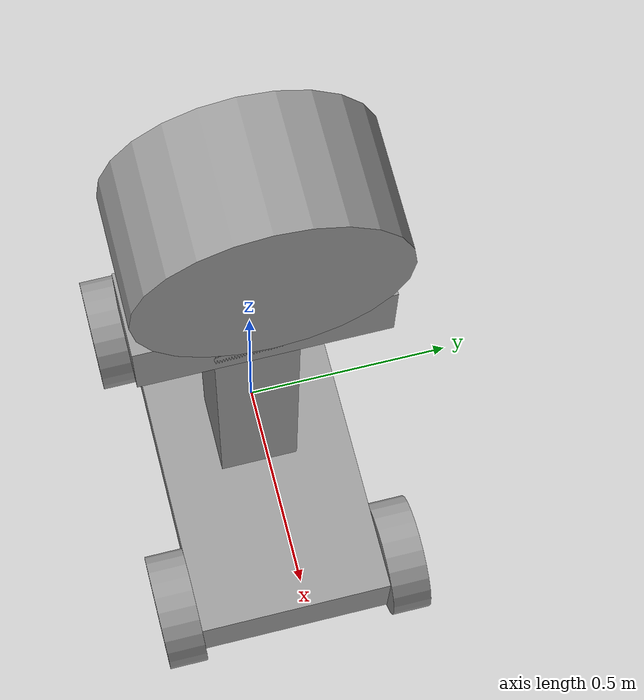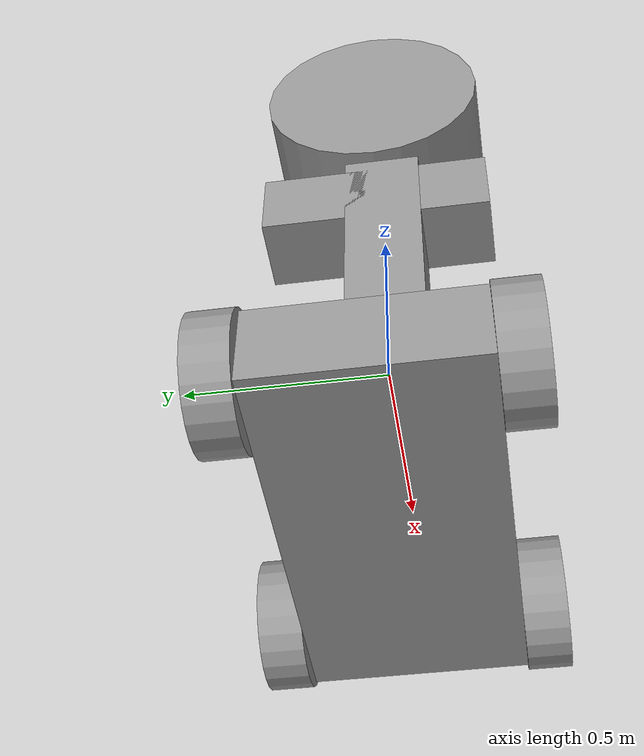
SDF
<?xml version='1.0'?>
<sdf version='1.6'>
  <model name='pa_bot'>
    <link name='link_0'>
      <inertial>
        <mass>1</mass>
        <inertia>
          <ixx>0.166667</ixx>
          <ixy>0</ixy>
          <ixz>0</ixz>
          <iyy>0.166667</iyy>
          <iyz>0</iyz>
          <izz>0.166667</izz>
        </inertia>
        <pose frame=''>0 0 0 0 -0 0</pose>
      </inertial>
      <pose frame=''>-0.0025 -0.005 -0.397504 0 -0 0</pose>
      <gravity>1</gravity>
      <self_collide>0</self_collide>
      <kinematic>0</kinematic>
      <enable_wind>0</enable_wind>
      <visual name='visual'>
        <pose frame=''>0 0 0 0 -0 0</pose>
        <geometry>
          <box>
            <size>1 0.5 0.2</size>
          </box>
        </geometry>
        <material>
          <lighting>1</lighting>
          <script>
            <uri>file://media/materials/scripts/gazebo.material</uri>
            <name>Gazebo/Grey</name>
          </script>
          <shader type='pixel'>
            <normal_map>__default__</normal_map>
          </shader>
          <ambient>0.3 0.3 0.3 1</ambient>
          <diffuse>0.7 0.7 0.7 1</diffuse>
          <specular>0.01 0.01 0.01 1</specular>
          <emissive>0 0 0 1</emissive>
        </material>
        <transparency>0</transparency>
        <cast_shadows>1</cast_shadows>
      </visual>
      <collision name='collision'>
        <laser_retro>0</laser_retro>
        <max_contacts>10</max_contacts>
        <pose frame=''>0 0 0 0 -0 0</pose>
        <geometry>
          <box>
            <size>1 0.5 0.2</size>
          </box>
        </geometry>
        <surface>
          <friction>
            <ode>
              <mu>1</mu>
              <mu2>1</mu2>
              <fdir1>0 0 0</fdir1>
              <slip1>0</slip1>
              <slip2>0</slip2>
            </ode>
            <torsional>
              <coefficient>1</coefficient>
              <patch_radius>0</patch_radius>
              <surface_radius>0</surface_radius>
              <use_patch_radius>1</use_patch_radius>
              <ode>
                <slip>0</slip>
              </ode>
            </torsional>
          </friction>
          <bounce>
            <restitution_coefficient>0</restitution_coefficient>
            <threshold>1e+06</threshold>
          </bounce>
          <contact>
            <collide_without_contact>0</collide_without_contact>
            <collide_without_contact_bitmask>1</collide_without_contact_bitmask>
            <collide_bitmask>1</collide_bitmask>
            <ode>
              <soft_cfm>0</soft_cfm>
              <soft_erp>0.2</soft_erp>
              <kp>1e+13</kp>
              <kd>1</kd>
              <max_vel>0.01</max_vel>
              <min_depth>0</min_depth>
            </ode>
            <bullet>
              <split_impulse>1</split_impulse>
              <split_impulse_penetration_threshold>-0.01</split_impulse_penetration_threshold>
              <soft_cfm>0</soft_cfm>
              <soft_erp>0.2</soft_erp>
              <kp>1e+13</kp>
              <kd>1</kd>
            </bullet>
          </contact>
        </surface>
      </collision>
    </link>
    <link name='link_1_clone'>
      <inertial>
        <mass>1</mass>
        <inertia>
          <ixx>0.145833</ixx>
          <ixy>0</ixy>
          <ixz>0</ixz>
          <iyy>0.145833</iyy>
          <iyz>0</iyz>
          <izz>0.125</izz>
        </inertia>
        <pose frame=''>0 0 0 0 -0 0</pose>
      </inertial>
      <pose frame=''>0.3975 0.294999 -0.397499 0 -0 0</pose>
      <gravity>1</gravity>
      <self_collide>0</self_collide>
      <kinematic>0</kinematic>
      <enable_wind>0</enable_wind>
      <visual name='visual'>
        <pose frame=''>0 0 0 1.5707 -0 0</pose>
        <geometry>
          <cylinder>
            <radius>0.15</radius>
            <length>0.1</length>
          </cylinder>
        </geometry>
        <material>
          <lighting>1</lighting>
          <script>
            <uri>file://media/materials/scripts/gazebo.material</uri>
            <name>Gazebo/Grey</name>
          </script>
          <shader type='pixel'>
            <normal_map>__default__</normal_map>
          </shader>
          <ambient>0.3 0.3 0.3 1</ambient>
          <diffuse>0.7 0.7 0.7 1</diffuse>
          <specular>0.01 0.01 0.01 1</specular>
          <emissive>0 0 0 1</emissive>
        </material>
        <transparency>0</transparency>
        <cast_shadows>1</cast_shadows>
      </visual>
      <collision name='collision'>
        <laser_retro>0</laser_retro>
        <max_contacts>10</max_contacts>
        <pose frame=''>0 0 0 1.5707 -0 0</pose>
        <geometry>
          <cylinder>
            <radius>0.15</radius>
            <length>0.1</length>
          </cylinder>
        </geometry>
        <surface>
          <friction>
            <ode>
              <mu>1</mu>
              <mu2>1</mu2>
              <fdir1>0 0 0</fdir1>
              <slip1>0</slip1>
              <slip2>0</slip2>
            </ode>
            <torsional>
              <coefficient>1</coefficient>
              <patch_radius>0</patch_radius>
              <surface_radius>0</surface_radius>
              <use_patch_radius>1</use_patch_radius>
              <ode>
                <slip>0</slip>
              </ode>
            </torsional>
          </friction>
          <bounce>
            <restitution_coefficient>0</restitution_coefficient>
            <threshold>1e+06</threshold>
          </bounce>
          <contact>
            <collide_without_contact>0</collide_without_contact>
            <collide_without_contact_bitmask>1</collide_without_contact_bitmask>
            <collide_bitmask>1</collide_bitmask>
            <ode>
              <soft_cfm>0</soft_cfm>
              <soft_erp>0.2</soft_erp>
              <kp>1e+13</kp>
              <kd>1</kd>
              <max_vel>0.01</max_vel>
              <min_depth>0</min_depth>
            </ode>
            <bullet>
              <split_impulse>1</split_impulse>
              <split_impulse_penetration_threshold>-0.01</split_impulse_penetration_threshold>
              <soft_cfm>0</soft_cfm>
              <soft_erp>0.2</soft_erp>
              <kp>1e+13</kp>
              <kd>1</kd>
            </bullet>
          </contact>
        </surface>
      </collision>
    </link>
    <link name='link_1_clone_clone'>
      <inertial>
        <mass>1</mass>
        <inertia>
          <ixx>0.145833</ixx>
          <ixy>0</ixy>
          <ixz>0</ixz>
          <iyy>0.145833</iyy>
          <iyz>0</iyz>
          <izz>0.125</izz>
        </inertia>
        <pose frame=''>0 0 0 0 -0 0</pose>
      </inertial>
      <pose frame=''>-0.4025 0.294999 -0.397499 0 -0 0</pose>
      <gravity>1</gravity>
      <self_collide>0</self_collide>
      <kinematic>0</kinematic>
      <enable_wind>0</enable_wind>
      <visual name='visual'>
        <pose frame=''>0 0 0 1.5707 -0 0</pose>
        <geometry>
          <cylinder>
            <radius>0.15</radius>
            <length>0.1</length>
          </cylinder>
        </geometry>
        <material>
          <lighting>1</lighting>
          <script>
            <uri>file://media/materials/scripts/gazebo.material</uri>
            <name>Gazebo/Grey</name>
          </script>
          <shader type='pixel'>
            <normal_map>__default__</normal_map>
          </shader>
          <ambient>0.3 0.3 0.3 1</ambient>
          <diffuse>0.7 0.7 0.7 1</diffuse>
          <specular>0.01 0.01 0.01 1</specular>
          <emissive>0 0 0 1</emissive>
        </material>
        <transparency>0</transparency>
        <cast_shadows>1</cast_shadows>
      </visual>
      <collision name='collision'>
        <laser_retro>0</laser_retro>
        <max_contacts>10</max_contacts>
        <pose frame=''>0 0 0 1.5707 -0 0</pose>
        <geometry>
          <cylinder>
            <radius>0.15</radius>
            <length>0.1</length>
          </cylinder>
        </geometry>
        <surface>
          <friction>
            <ode>
              <mu>1</mu>
              <mu2>1</mu2>
              <fdir1>0 0 0</fdir1>
              <slip1>0</slip1>
              <slip2>0</slip2>
            </ode>
            <torsional>
              <coefficient>1</coefficient>
              <patch_radius>0</patch_radius>
              <surface_radius>0</surface_radius>
              <use_patch_radius>1</use_patch_radius>
              <ode>
                <slip>0</slip>
              </ode>
            </torsional>
          </friction>
          <bounce>
            <restitution_coefficient>0</restitution_coefficient>
            <threshold>1e+06</threshold>
          </bounce>
          <contact>
            <collide_without_contact>0</collide_without_contact>
            <collide_without_contact_bitmask>1</collide_without_contact_bitmask>
            <collide_bitmask>1</collide_bitmask>
            <ode>
              <soft_cfm>0</soft_cfm>
              <soft_erp>0.2</soft_erp>
              <kp>1e+13</kp>
              <kd>1</kd>
              <max_vel>0.01</max_vel>
              <min_depth>0</min_depth>
            </ode>
            <bullet>
              <split_impulse>1</split_impulse>
              <split_impulse_penetration_threshold>-0.01</split_impulse_penetration_threshold>
              <soft_cfm>0</soft_cfm>
              <soft_erp>0.2</soft_erp>
              <kp>1e+13</kp>
              <kd>1</kd>
            </bullet>
          </contact>
        </surface>
      </collision>
    </link>
    <link name='link_1_clone_clone_0'>
      <inertial>
        <mass>1</mass>
        <inertia>
          <ixx>0.145833</ixx>
          <ixy>0</ixy>
          <ixz>0</ixz>
          <iyy>0.145833</iyy>
          <iyz>0</iyz>
          <izz>0.125</izz>
        </inertia>
        <pose frame=''>0 0 0 0 -0 0</pose>
      </inertial>
      <pose frame=''>-0.4025 -0.304999 -0.397499 0 -0 0</pose>
      <gravity>1</gravity>
      <self_collide>0</self_collide>
      <kinematic>0</kinematic>
      <enable_wind>0</enable_wind>
      <visual name='visual'>
        <pose frame=''>0 0 0 1.5707 -0 0</pose>
        <geometry>
          <cylinder>
            <radius>0.15</radius>
            <length>0.1</length>
          </cylinder>
        </geometry>
        <material>
          <lighting>1</lighting>
          <script>
            <uri>file://media/materials/scripts/gazebo.material</uri>
            <name>Gazebo/Grey</name>
          </script>
          <shader type='pixel'>
            <normal_map>__default__</normal_map>
          </shader>
          <ambient>0.3 0.3 0.3 1</ambient>
          <diffuse>0.7 0.7 0.7 1</diffuse>
          <specular>0.01 0.01 0.01 1</specular>
          <emissive>0 0 0 1</emissive>
        </material>
        <transparency>0</transparency>
        <cast_shadows>1</cast_shadows>
      </visual>
      <collision name='collision'>
        <laser_retro>0</laser_retro>
        <max_contacts>10</max_contacts>
        <pose frame=''>0 0 0 1.5707 -0 0</pose>
        <geometry>
          <cylinder>
            <radius>0.15</radius>
            <length>0.1</length>
          </cylinder>
        </geometry>
        <surface>
          <friction>
            <ode>
              <mu>1</mu>
              <mu2>1</mu2>
              <fdir1>0 0 0</fdir1>
              <slip1>0</slip1>
              <slip2>0</slip2>
            </ode>
            <torsional>
              <coefficient>1</coefficient>
              <patch_radius>0</patch_radius>
              <surface_radius>0</surface_radius>
              <use_patch_radius>1</use_patch_radius>
              <ode>
                <slip>0</slip>
              </ode>
            </torsional>
          </friction>
          <bounce>
            <restitution_coefficient>0</restitution_coefficient>
            <threshold>1e+06</threshold>
          </bounce>
          <contact>
            <collide_without_contact>0</collide_without_contact>
            <collide_without_contact_bitmask>1</collide_without_contact_bitmask>
            <collide_bitmask>1</collide_bitmask>
            <ode>
              <soft_cfm>0</soft_cfm>
              <soft_erp>0.2</soft_erp>
              <kp>1e+13</kp>
              <kd>1</kd>
              <max_vel>0.01</max_vel>
              <min_depth>0</min_depth>
            </ode>
            <bullet>
              <split_impulse>1</split_impulse>
              <split_impulse_penetration_threshold>-0.01</split_impulse_penetration_threshold>
              <soft_cfm>0</soft_cfm>
              <soft_erp>0.2</soft_erp>
              <kp>1e+13</kp>
              <kd>1</kd>
            </bullet>
          </contact>
        </surface>
      </collision>
    </link>
    <link name='link_1_clone_clone_1'>
      <inertial>
        <mass>1</mass>
        <inertia>
          <ixx>0.145833</ixx>
          <ixy>0</ixy>
          <ixz>0</ixz>
          <iyy>0.145833</iyy>
          <iyz>0</iyz>
          <izz>0.125</izz>
        </inertia>
        <pose frame=''>0 0 0 0 -0 0</pose>
      </inertial>
      <pose frame=''>0.3975 -0.304999 -0.397499 0 -0 0</pose>
      <gravity>1</gravity>
      <self_collide>0</self_collide>
      <kinematic>0</kinematic>
      <enable_wind>0</enable_wind>
      <visual name='visual'>
        <pose frame=''>0 0 0 1.5707 -0 0</pose>
        <geometry>
          <cylinder>
            <radius>0.15</radius>
            <length>0.1</length>
          </cylinder>
        </geometry>
        <material>
          <lighting>1</lighting>
          <script>
            <uri>file://media/materials/scripts/gazebo.material</uri>
            <name>Gazebo/Grey</name>
          </script>
          <shader type='pixel'>
            <normal_map>__default__</normal_map>
          </shader>
          <ambient>0.3 0.3 0.3 1</ambient>
          <diffuse>0.7 0.7 0.7 1</diffuse>
          <specular>0.01 0.01 0.01 1</specular>
          <emissive>0 0 0 1</emissive>
        </material>
        <transparency>0</transparency>
        <cast_shadows>1</cast_shadows>
      </visual>
      <collision name='collision'>
        <laser_retro>0</laser_retro>
        <max_contacts>10</max_contacts>
        <pose frame=''>0 0 0 1.5707 -0 0</pose>
        <geometry>
          <cylinder>
            <radius>0.15</radius>
            <length>0.1</length>
          </cylinder>
        </geometry>
        <surface>
          <friction>
            <ode>
              <mu>1</mu>
              <mu2>1</mu2>
              <fdir1>0 0 0</fdir1>
              <slip1>0</slip1>
              <slip2>0</slip2>
            </ode>
            <torsional>
              <coefficient>1</coefficient>
              <patch_radius>0</patch_radius>
              <surface_radius>0</surface_radius>
              <use_patch_radius>1</use_patch_radius>
              <ode>
                <slip>0</slip>
              </ode>
            </torsional>
          </friction>
          <bounce>
            <restitution_coefficient>0</restitution_coefficient>
            <threshold>1e+06</threshold>
          </bounce>
          <contact>
            <collide_without_contact>0</collide_without_contact>
            <collide_without_contact_bitmask>1</collide_without_contact_bitmask>
            <collide_bitmask>1</collide_bitmask>
            <ode>
              <soft_cfm>0</soft_cfm>
              <soft_erp>0.2</soft_erp>
              <kp>1e+13</kp>
              <kd>1</kd>
              <max_vel>0.01</max_vel>
              <min_depth>0</min_depth>
            </ode>
            <bullet>
              <split_impulse>1</split_impulse>
              <split_impulse_penetration_threshold>-0.01</split_impulse_penetration_threshold>
              <soft_cfm>0</soft_cfm>
              <soft_erp>0.2</soft_erp>
              <kp>1e+13</kp>
              <kd>1</kd>
            </bullet>
          </contact>
        </surface>
      </collision>
    </link>
    <link name='link_2'>
      <inertial>
        <mass>1</mass>
        <inertia>
          <ixx>0.166667</ixx>
          <ixy>0</ixy>
          <ixz>0</ixz>
          <iyy>0.166667</iyy>
          <iyz>0</iyz>
          <izz>0.166667</izz>
        </inertia>
        <pose frame=''>0 0 0 0 -0 0</pose>
      </inertial>
      <pose frame=''>-0.0025 -0.005 0.242496 0 -0 0</pose>
      <gravity>1</gravity>
      <self_collide>0</self_collide>
      <kinematic>0</kinematic>
      <enable_wind>0</enable_wind>
      <visual name='visual'>
        <pose frame=''>0 0 0 0 -0 0</pose>
        <geometry>
          <box>
            <size>0.2 0.2 1</size>
          </box>
        </geometry>
        <material>
          <lighting>1</lighting>
          <script>
            <uri>file://media/materials/scripts/gazebo.material</uri>
            <name>Gazebo/Grey</name>
          </script>
          <shader type='pixel'>
            <normal_map>__default__</normal_map>
          </shader>
          <ambient>0.3 0.3 0.3 1</ambient>
          <diffuse>0.7 0.7 0.7 1</diffuse>
          <specular>0.01 0.01 0.01 1</specular>
          <emissive>0 0 0 1</emissive>
        </material>
        <transparency>0</transparency>
        <cast_shadows>1</cast_shadows>
      </visual>
      <collision name='collision'>
        <laser_retro>0</laser_retro>
        <max_contacts>10</max_contacts>
        <pose frame=''>0 0 0 0 -0 0</pose>
        <geometry>
          <box>
            <size>0.2 0.2 1</size>
          </box>
        </geometry>
        <surface>
          <friction>
            <ode>
              <mu>1</mu>
              <mu2>1</mu2>
              <fdir1>0 0 0</fdir1>
              <slip1>0</slip1>
              <slip2>0</slip2>
            </ode>
            <torsional>
              <coefficient>1</coefficient>
              <patch_radius>0</patch_radius>
              <surface_radius>0</surface_radius>
              <use_patch_radius>1</use_patch_radius>
              <ode>
                <slip>0</slip>
              </ode>
            </torsional>
          </friction>
          <bounce>
            <restitution_coefficient>0</restitution_coefficient>
            <threshold>1e+06</threshold>
          </bounce>
          <contact>
            <collide_without_contact>0</collide_without_contact>
            <collide_without_contact_bitmask>1</collide_without_contact_bitmask>
            <collide_bitmask>1</collide_bitmask>
            <ode>
              <soft_cfm>0</soft_cfm>
              <soft_erp>0.2</soft_erp>
              <kp>1e+13</kp>
              <kd>1</kd>
              <max_vel>0.01</max_vel>
              <min_depth>0</min_depth>
            </ode>
            <bullet>
              <split_impulse>1</split_impulse>
              <split_impulse_penetration_threshold>-0.01</split_impulse_penetration_threshold>
              <soft_cfm>0</soft_cfm>
              <soft_erp>0.2</soft_erp>
              <kp>1e+13</kp>
              <kd>1</kd>
            </bullet>
          </contact>
        </surface>
      </collision>
    </link>
    <link name='link_3'>
      <inertial>
        <mass>1</mass>
        <inertia>
          <ixx>0.166667</ixx>
          <ixy>0</ixy>
          <ixz>0</ixz>
          <iyy>0.166667</iyy>
          <iyz>0</iyz>
          <izz>0.166667</izz>
        </inertia>
        <pose frame=''>0 0 0 0 -0 0</pose>
      </inertial>
      <pose frame=''>-0.0025 0.015 0.602496 0 -0 0</pose>
      <gravity>1</gravity>
      <self_collide>0</self_collide>
      <kinematic>0</kinematic>
      <enable_wind>0</enable_wind>
      <visual name='visual'>
        <pose frame=''>0 0 0 0 -0 0</pose>
        <geometry>
          <box>
            <size>0.2 0.6 0.2</size>
          </box>
        </geometry>
        <material>
          <lighting>1</lighting>
          <script>
            <uri>file://media/materials/scripts/gazebo.material</uri>
            <name>Gazebo/Grey</name>
          </script>
          <shader type='pixel'>
            <normal_map>__default__</normal_map>
          </shader>
          <ambient>0.3 0.3 0.3 1</ambient>
          <diffuse>0.7 0.7 0.7 1</diffuse>
          <specular>0.01 0.01 0.01 1</specular>
          <emissive>0 0 0 1</emissive>
        </material>
        <transparency>0</transparency>
        <cast_shadows>1</cast_shadows>
      </visual>
      <collision name='collision'>
        <laser_retro>0</laser_retro>
        <max_contacts>10</max_contacts>
        <pose frame=''>0 0 0 0 -0 0</pose>
        <geometry>
          <box>
            <size>0.2 0.6 0.2</size>
          </box>
        </geometry>
        <surface>
          <friction>
            <ode>
              <mu>1</mu>
              <mu2>1</mu2>
              <fdir1>0 0 0</fdir1>
              <slip1>0</slip1>
              <slip2>0</slip2>
            </ode>
            <torsional>
              <coefficient>1</coefficient>
              <patch_radius>0</patch_radius>
              <surface_radius>0</surface_radius>
              <use_patch_radius>1</use_patch_radius>
              <ode>
                <slip>0</slip>
              </ode>
            </torsional>
          </friction>
          <bounce>
            <restitution_coefficient>0</restitution_coefficient>
            <threshold>1e+06</threshold>
          </bounce>
          <contact>
            <collide_without_contact>0</collide_without_contact>
            <collide_without_contact_bitmask>1</collide_without_contact_bitmask>
            <collide_bitmask>1</collide_bitmask>
            <ode>
              <soft_cfm>0</soft_cfm>
              <soft_erp>0.2</soft_erp>
              <kp>1e+13</kp>
              <kd>1</kd>
              <max_vel>0.01</max_vel>
              <min_depth>0</min_depth>
            </ode>
            <bullet>
              <split_impulse>1</split_impulse>
              <split_impulse_penetration_threshold>-0.01</split_impulse_penetration_threshold>
              <soft_cfm>0</soft_cfm>
              <soft_erp>0.2</soft_erp>
              <kp>1e+13</kp>
              <kd>1</kd>
            </bullet>
          </contact>
        </surface>
      </collision>
    </link>
    <link name='link_5'>
      <inertial>
        <mass>1</mass>
        <inertia>
          <ixx>0.145833</ixx>
          <ixy>0</ixy>
          <ixz>0</ixz>
          <iyy>0.145833</iyy>
          <iyz>0</iyz>
          <izz>0.125</izz>
        </inertia>
        <pose frame=''>0 0 -0.1 0 -0 0</pose>
      </inertial>
      <pose frame=''>0.0175 0.015 1.14251 0 -0 0</pose>
      <gravity>1</gravity>
      <self_collide>0</self_collide>
      <kinematic>0</kinematic>
      <enable_wind>0</enable_wind>
      <visual name='visual'>
        <pose frame=''>0 0 -0.1 0 1.5707 0</pose>
        <geometry>
          <cylinder>
            <radius>0.3</radius>
            <length>0.3</length>
          </cylinder>
        </geometry>
        <material>
          <lighting>1</lighting>
          <script>
            <uri>file://media/materials/scripts/gazebo.material</uri>
            <name>Gazebo/Grey</name>
          </script>
          <shader type='pixel'>
            <normal_map>__default__</normal_map>
          </shader>
          <ambient>0.3 0.3 0.3 1</ambient>
          <diffuse>0.7 0.7 0.7 1</diffuse>
          <specular>0.01 0.01 0.01 1</specular>
          <emissive>0 0 0 1</emissive>
        </material>
        <transparency>0</transparency>
        <cast_shadows>1</cast_shadows>
      </visual>
      <collision name='collision'>
        <laser_retro>0</laser_retro>
        <max_contacts>10</max_contacts>
        <pose frame=''>0 0 -0.1 0 1.5707 0</pose>
        <geometry>
          <cylinder>
            <radius>0.3</radius>
            <length>0.3</length>
          </cylinder>
        </geometry>
        <surface>
          <friction>
            <ode>
              <mu>1</mu>
              <mu2>1</mu2>
              <fdir1>0 0 0</fdir1>
              <slip1>0</slip1>
              <slip2>0</slip2>
            </ode>
            <torsional>
              <coefficient>1</coefficient>
              <patch_radius>0</patch_radius>
              <surface_radius>0</surface_radius>
              <use_patch_radius>1</use_patch_radius>
              <ode>
                <slip>0</slip>
              </ode>
            </torsional>
          </friction>
          <bounce>
            <restitution_coefficient>0</restitution_coefficient>
            <threshold>1e+06</threshold>
          </bounce>
          <contact>
            <collide_without_contact>0</collide_without_contact>
            <collide_without_contact_bitmask>1</collide_without_contact_bitmask>
            <collide_bitmask>1</collide_bitmask>
            <ode>
              <soft_cfm>0</soft_cfm>
              <soft_erp>0.2</soft_erp>
              <kp>1e+13</kp>
              <kd>1</kd>
              <max_vel>0.01</max_vel>
              <min_depth>0</min_depth>
            </ode>
            <bullet>
              <split_impulse>1</split_impulse>
              <split_impulse_penetration_threshold>-0.01</split_impulse_penetration_threshold>
              <soft_cfm>0</soft_cfm>
              <soft_erp>0.2</soft_erp>
              <kp>1e+13</kp>
              <kd>1</kd>
            </bullet>
          </contact>
        </surface>
      </collision>
    </link>
    <joint name='link_0_JOINT_1' type='revolute'>
      <parent>link_0</parent>
      <child>link_1_clone_clone</child>
      <pose frame=''>0 0 0 0 -0 0</pose>
      <axis>
        <xyz>0 1 0</xyz>
        <use_parent_model_frame>0</use_parent_model_frame>
        <limit>
          <lower>-1.79769e+308</lower>
          <upper>1.79769e+308</upper>
          <effort>-1</effort>
          <velocity>-1</velocity>
        </limit>
        <dynamics>
          <spring_reference>0</spring_reference>
          <spring_stiffness>0</spring_stiffness>
          <damping>0</damping>
        </dynamics>
      </axis>
      <physics>
        <ode>
          <limit>
            <cfm>0</cfm>
            <erp>0.2</erp>
          </limit>
          <suspension>
            <cfm>0</cfm>
            <erp>0.2</erp>
          </suspension>
        </ode>
      </physics>
    </joint>
    <joint name='link_0_JOINT_2' type='revolute'>
      <parent>link_0</parent>
      <child>link_1_clone_clone_0</child>
      <pose frame=''>0 0 0 0 -0 0</pose>
      <axis>
        <xyz>0 1 0</xyz>
        <use_parent_model_frame>0</use_parent_model_frame>
        <limit>
          <lower>-1.79769e+308</lower>
          <upper>1.79769e+308</upper>
          <effort>-1</effort>
          <velocity>-1</velocity>
        </limit>
        <dynamics>
          <spring_reference>0</spring_reference>
          <spring_stiffness>0</spring_stiffness>
          <damping>0</damping>
        </dynamics>
      </axis>
      <physics>
        <ode>
          <limit>
            <cfm>0</cfm>
            <erp>0.2</erp>
          </limit>
          <suspension>
            <cfm>0</cfm>
            <erp>0.2</erp>
          </suspension>
        </ode>
      </physics>
    </joint>
    <joint name='link_0_JOINT_3' type='revolute'>
      <parent>link_0</parent>
      <child>link_1_clone</child>
      <pose frame=''>0 0 0 0 -0 0</pose>
      <axis>
        <xyz>0 1 0</xyz>
        <use_parent_model_frame>0</use_parent_model_frame>
        <limit>
          <lower>-1.79769e+308</lower>
          <upper>1.79769e+308</upper>
          <effort>-1</effort>
          <velocity>-1</velocity>
        </limit>
        <dynamics>
          <spring_reference>0</spring_reference>
          <spring_stiffness>0</spring_stiffness>
          <damping>0</damping>
        </dynamics>
      </axis>
      <physics>
        <ode>
          <limit>
            <cfm>0</cfm>
            <erp>0.2</erp>
          </limit>
          <suspension>
            <cfm>0</cfm>
            <erp>0.2</erp>
          </suspension>
        </ode>
      </physics>
    </joint>
    <joint name='link_0_JOINT_4' type='revolute'>
      <parent>link_0</parent>
      <child>link_1_clone_clone_1</child>
      <pose frame=''>0 0 0 0 -0 0</pose>
      <axis>
        <xyz>1 0 0</xyz>
        <use_parent_model_frame>0</use_parent_model_frame>
        <limit>
          <lower>-1.79769e+308</lower>
          <upper>1.79769e+308</upper>
          <effort>-1</effort>
          <velocity>-1</velocity>
        </limit>
        <dynamics>
          <spring_reference>0</spring_reference>
          <spring_stiffness>0</spring_stiffness>
          <damping>0</damping>
        </dynamics>
      </axis>
      <physics>
        <ode>
          <limit>
            <cfm>0</cfm>
            <erp>0.2</erp>
          </limit>
          <suspension>
            <cfm>0</cfm>
            <erp>0.2</erp>
          </suspension>
        </ode>
      </physics>
    </joint>
    <joint name='link_0_JOINT_5' type='revolute'>
      <parent>link_0</parent>
      <child>link_2</child>
      <pose frame=''>0 0 0 0 -0 0</pose>
      <axis>
        <xyz>0 0 1</xyz>
        <use_parent_model_frame>0</use_parent_model_frame>
        <limit>
          <lower>-1.79769e+308</lower>
          <upper>1.79769e+308</upper>
          <effort>-1</effort>
          <velocity>-1</velocity>
        </limit>
        <dynamics>
          <spring_reference>0</spring_reference>
          <spring_stiffness>0</spring_stiffness>
          <damping>0</damping>
        </dynamics>
      </axis>
      <physics>
        <ode>
          <limit>
            <cfm>0</cfm>
            <erp>0.2</erp>
          </limit>
          <suspension>
            <cfm>0</cfm>
            <erp>0.2</erp>
          </suspension>
        </ode>
      </physics>
    </joint>
    <joint name='link_2_JOINT_6' type='revolute'>
      <parent>link_2</parent>
      <child>link_3</child>
      <pose frame=''>0 0 0 0 -0 0</pose>
      <axis>
        <xyz>1 0 0</xyz>
        <use_parent_model_frame>0</use_parent_model_frame>
        <limit>
          <lower>-1.79769e+308</lower>
          <upper>1.79769e+308</upper>
          <effort>-1</effort>
          <velocity>-1</velocity>
        </limit>
        <dynamics>
          <spring_reference>0</spring_reference>
          <spring_stiffness>0</spring_stiffness>
          <damping>0</damping>
        </dynamics>
      </axis>
      <physics>
        <ode>
          <limit>
            <cfm>0</cfm>
            <erp>0.2</erp>
          </limit>
          <suspension>
            <cfm>0</cfm>
            <erp>0.2</erp>
          </suspension>
        </ode>
      </physics>
    </joint>
    <joint name='link_2_JOINT_7' type='revolute'>
      <parent>link_2</parent>
      <child>link_5</child>
      <pose frame=''>0 0 0 0 -0 0</pose>
      <axis>
        <xyz>1 0 0</xyz>
        <use_parent_model_frame>0</use_parent_model_frame>
        <limit>
          <lower>-1.79769e+308</lower>
          <upper>1.79769e+308</upper>
          <effort>-1</effort>
          <velocity>-1</velocity>
        </limit>
        <dynamics>
          <spring_reference>0</spring_reference>
          <spring_stiffness>0</spring_stiffness>
          <damping>0</damping>
          <friction>0</friction>
        </dynamics>
      </axis>
      <physics>
        <ode>
          <limit>
            <cfm>0</cfm>
            <erp>0.2</erp>
          </limit>
          <suspension>
            <cfm>0</cfm>
            <erp>0.2</erp>
          </suspension>
        </ode>
      </physics>
    </joint>
    <static>0</static>
    <allow_auto_disable>1</allow_auto_disable>
  </model>
</sdf>
